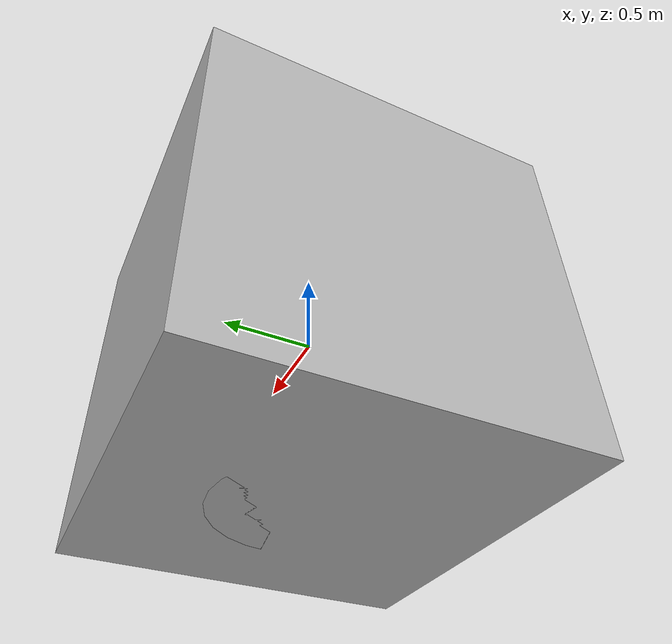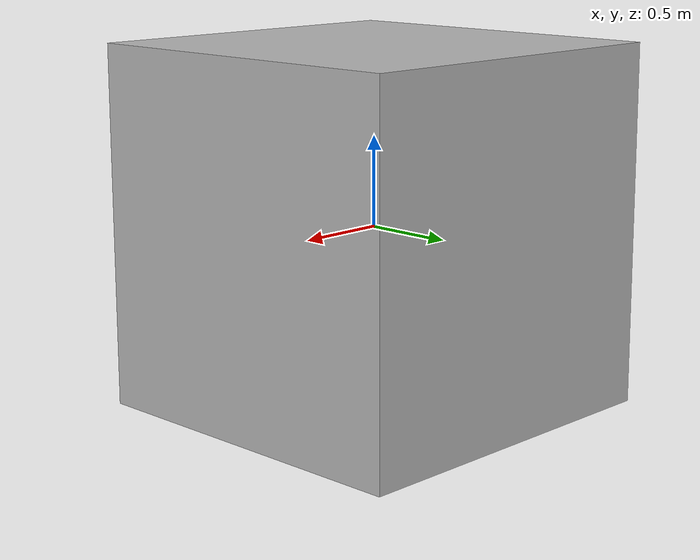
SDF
<sdf version='1.6'>
  <model name='test_robot'>
    <link name='link1'>
      <visual name='link1_visual1'>
        <geometry>
          <sphere>
            <radius>1.0</radius>
          </sphere>
        </geometry>
      </visual>
      <visual name='link1_visual2'>
        <geometry>
          <mesh>
            <uri>../../../shapes/test/tri_cube.obj</uri>
          </mesh>
        </geometry>
      </visual>
    </link>

    <link name='link2'>
      <visual name='link2_visual1'>
        <geometry>
          <sphere>
            <radius>1.0</radius>
          </sphere>
        </geometry>
      </visual>
      <visual name='link2_visual2'>
        <geometry>
          <cylinder>
            <radius>0.5</radius>
            <length>2.0</length>
          </cylinder>
        </geometry>
      </visual>
      <visual name='link2_visual3'>
        <geometry>
          <plane>
            <normal>1 2 3</normal>
          </plane>
        </geometry>
      </visual>
    </link>

    <link name='link3'>
      <visual name='link3_visual1'>
        <geometry>
          <empty/>
        </geometry>
      </visual>
    </link>

  </model>
</sdf>
